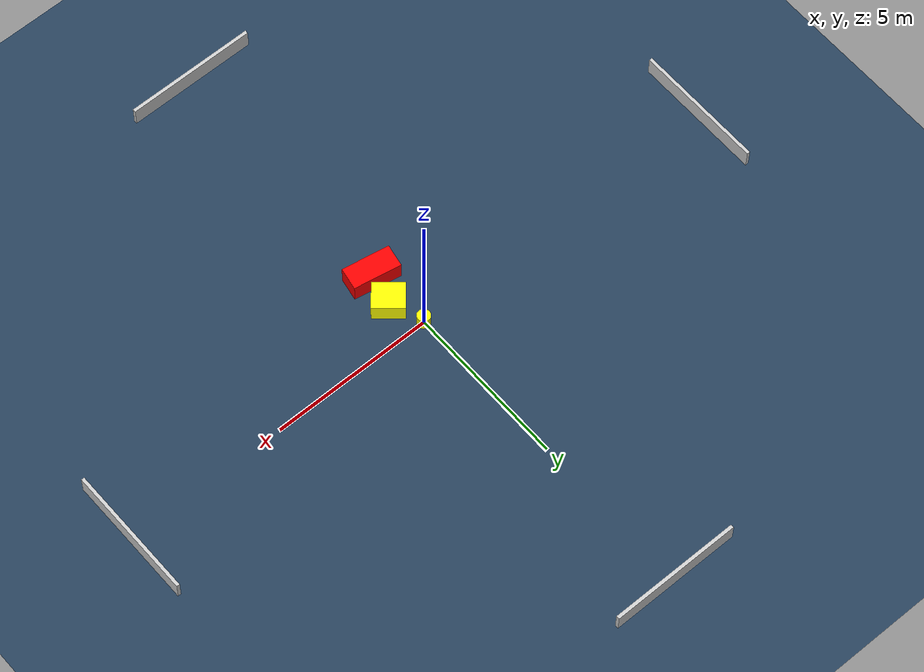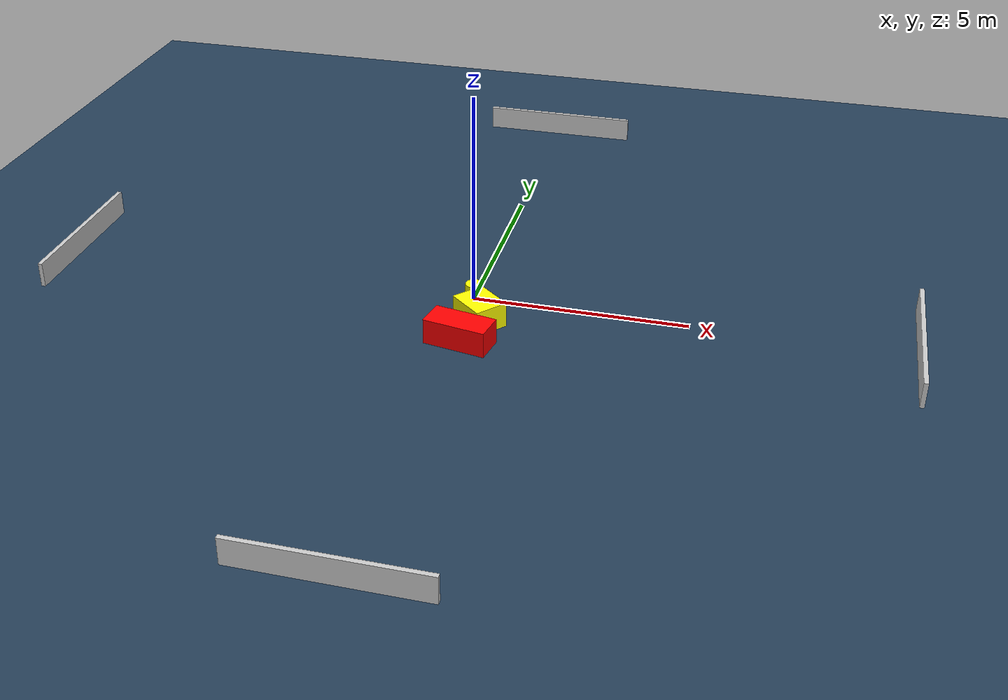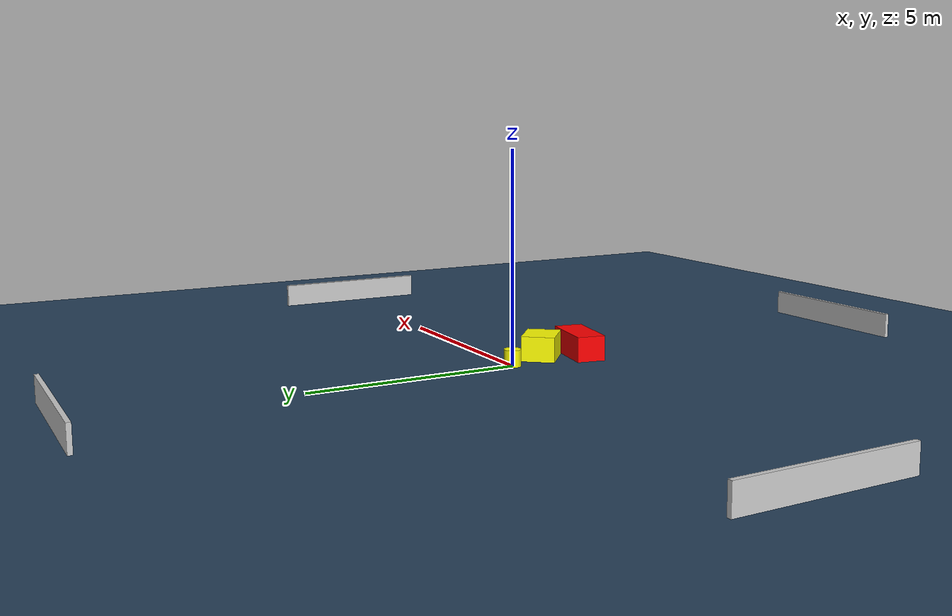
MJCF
<?xml version="1.0" ?>
<mujoco model="generated_environment">
  <option timestep="0.01" integrator="RK4" cone="elliptic"/>
  <default>
    <geom density="1"/>
  </default>
  <asset>
    <texture builtin="gradient" height="3072" name="skybox" rgb1="0.3 0.5 0.7" rgb2="0 0 0" type="skybox" width="512"/>
    <texture builtin="checker" height="300" name="groundplane" rgb1="0.2 0.3 0.4" rgb2="0.1 0.2 0.3" type="2d" width="300"/>
    <material name="groundplane" reflectance="0.2" texrepeat="5 5" texture="groundplane"/>
  </asset>
  <worldbody>
    <light dir="0 0 -1" directional="true" pos="0 0 1.5"/>
    <geom condim="3" friction="0.5 0.005 0.001" material="groundplane" name="floor" pos="0 0 0" size="0 0 0.05" type="plane"/>
    <body name="walls">
      <geom name="wall_1" condim="4" pos="-10.0 0.0 0.3" rgba="0.800000011920929 0.800000011920929 0.800000011920929 1.0" size="0.05 2.0 0.3" type="box"/>
      <geom name="wall_2" condim="4" pos="10.0 0.0 0.3" rgba="0.800000011920929 0.800000011920929 0.800000011920929 1.0" size="0.05 2.0 0.3" type="box"/>
      <geom name="wall_3" condim="4" pos="0.0 -10.0 0.3" rgba="0.800000011920929 0.800000011920929 0.800000011920929 1.0" size="2.0 0.05 0.3" type="box"/>
      <geom name="wall_4" condim="4" pos="0.0 10.0 0.3" rgba="0.800000011920929 0.800000011920929 0.800000011920929 1.0" size="2.0 0.05 0.3" type="box"/>
    </body>
    <body name="robot">
      <joint name="joint_x" type="slide" pos="0 0 0" axis="1 0 0"/>
      <joint name="joint_y" type="slide" pos="0 0 0" axis="0 1 0"/>
      <geom name="robot" type="cylinder" pos="0.0 0.0 0.2" size="0.2 0.2 0.0" mass="5.0" friction="1.0 0.005 0.0001" condim="4" rgba="1.0 1.0 0.0 1.0"/>
    </body>
    <body name="obstacle_1_movable">
      <geom name="obstacle_1_movable" condim="4" pos="0.3910551306437244 -1.0056832544225052 0.3" euler="0 0 139.3470850893511" friction="0.0 0.005 0.001" rgba="1.0 1.0 0.0 1.0" size="0.4736077773688477 0.40015887703377384 0.3" type="box" mass="0.1"/>
      <joint type="free"/>
    </body>
    <body name="obstacle_2_static">
      <geom name="obstacle_2_static" condim="4" pos="0.1835000077139333 -1.9577648248353599 0.3" euler="0 0 169.70960729162707" friction="0.0 0.005 0.001" rgba="1.0 0.0 0.0 1.0" size="0.7293635848201074 0.3434248041692145 0.3" type="box"/>
    </body>
  </worldbody>
  <actuator>
    <motor name="actuator_x" joint="joint_x" gear="1" ctrlrange="-1 1"/>
    <motor name="actuator_y" joint="joint_y" gear="1" ctrlrange="-1 1"/>
  </actuator>
</mujoco>
